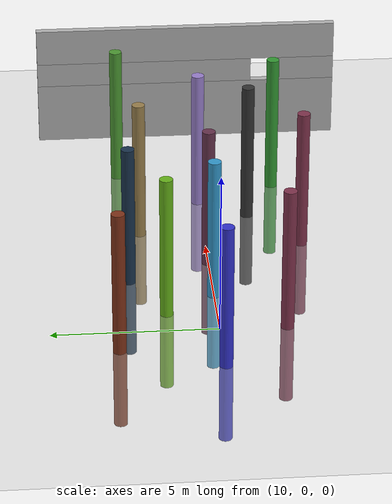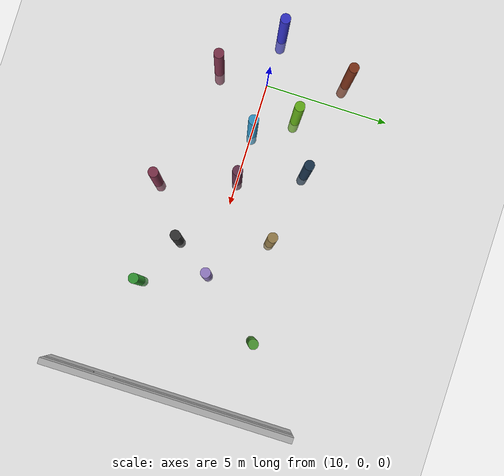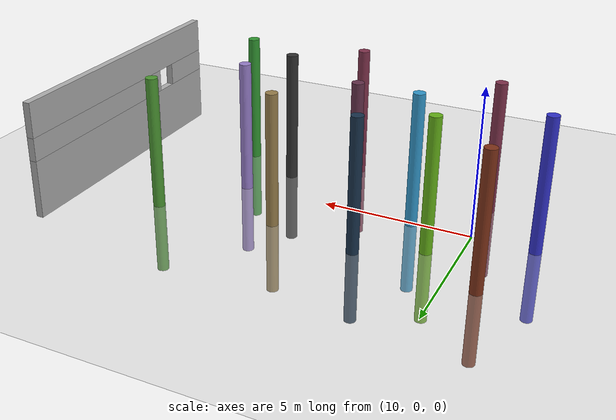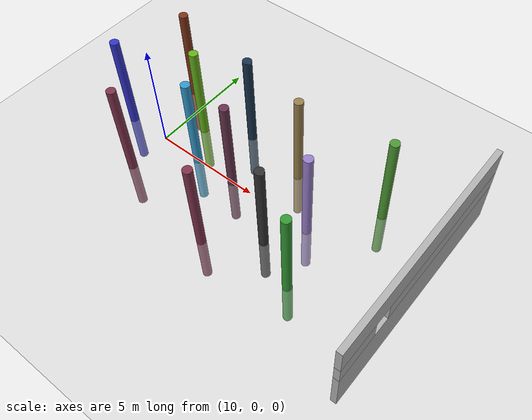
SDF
<sdf version="1.9">
 <world name="default">
  <physics type="ode">
   <max_step_size>0.004</max_step_size>
   <real_time_factor>1.0</real_time_factor>
   <real_time_update_rate>250</real_time_update_rate>
  </physics>
  <gravity>0 0 -9.8</gravity>
  <magnetic_field>6e-06 2.3e-05 -4.2e-05</magnetic_field>
  <atmosphere type="adiabatic"/>
  <scene>
   <grid>false</grid>
   <ambient>0.4 0.4 0.4 1</ambient>
   <background>0.7 0.7 0.7 1</background>
   <shadows>true</shadows>
  </scene>
  <light name="sunUTC" type="directional">
   <pose>0 0 500 0 -0 0</pose>
   <intensity>1</intensity>
   <direction>0.001 0.625 -0.78</direction>
   <diffuse>0.904 0.904 0.904 1</diffuse>
   <specular>0.271 0.271 0.271 1</specular>
   <attenuation><range>2000</range><linear>0</linear><constant>1</constant><quadratic>0</quadratic></attenuation>
   <spot><inner_angle>0</inner_angle><outer_angle>0</outer_angle><falloff>0</falloff></spot>
  </light>
  <spherical_coordinates>
   <surface_model>EARTH_WGS84</surface_model>
   <world_frame_orientation>ENU</world_frame_orientation>
   <latitude_deg>37.412173071650805</latitude_deg>
   <longitude_deg>-121.998878727967</longitude_deg>
   <elevation>38</elevation>
  </spherical_coordinates>
  <model name="ground_plane">
   <static>true</static>
   <link name="link">
    <collision name="collision">
     <geometry><plane><normal>0 0 1</normal><size>1 1</size></plane></geometry>
    </collision>
    <visual name="visual">
     <geometry><plane><normal>0 0 1</normal><size>100 100</size></plane></geometry>
     <material>
      <ambient>0.8 0.8 0.8 1</ambient>
      <diffuse>0.8 0.8 0.8 1</diffuse>
      <specular>0.8 0.8 0.8 1</specular>
     </material>
    </visual>
    <inertial>
     <mass>1</mass>
     <inertia><ixx>1</ixx><ixy>0</ixy><ixz>0</ixz><iyy>1</iyy><iyz>0</iyz><izz>1</izz></inertia>
    </inertial>
   </link>
  </model>
  <model name="box1">
   <pose>23 0 1 0 0 0</pose>
   <static>true</static>
   <link name="link1">
    <collision name="collision"><geometry><box><size>0.25 10 2</size></box></geometry></collision>
    <visual name="visual">
     <geometry><box><size>0.25 10 2</size></box></geometry>
     <material>
      <ambient>0.3 0.3 0.3 1</ambient>
      <diffuse>0.7 0.7 0.7 1</diffuse>
      <specular>1 1 1 1</specular>
     </material>
    </visual>
   </link>
  </model>
  <model name="box2">
   <pose>23 -4 2.4 0 0 0</pose>
   <static>true</static>
   <link name="link1">
    <collision name="collision"><geometry><box><size>0.25 2 0.8</size></box></geometry></collision>
    <visual name="visual">
     <geometry><box><size>0.25 2 0.8</size></box></geometry>
     <material>
      <ambient>0.3 0.3 0.3 1</ambient>
      <diffuse>0.7 0.7 0.7 1</diffuse>
      <specular>1 1 1 1</specular>
     </material>
    </visual>
   </link>
  </model>
  <model name="box3">
   <pose>23 1.4 2.4 0 0 0</pose>
   <static>true</static>
   <link name="link1">
    <collision name="collision"><geometry><box><size>0.25 7.2 0.8</size></box></geometry></collision>
    <visual name="visual">
     <geometry><box><size>0.25 7.2 0.8</size></box></geometry>
     <material>
      <ambient>0.3 0.3 0.3 1</ambient>
      <diffuse>0.7 0.7 0.7 1</diffuse>
      <specular>1 1 1 1</specular>
     </material>
    </visual>
   </link>
  </model>
  <model name="box4">
   <pose>23 0 3.4 0 0 0</pose>
   <static>true</static>
   <link name="link1">
    <collision name="collision"><geometry><box><size>0.25 10 1.2</size></box></geometry></collision>
    <visual name="visual">
     <geometry><box><size>0.25 10 1.2</size></box></geometry>
     <material>
      <ambient>0.3 0.3 0.3 1</ambient>
      <diffuse>0.7 0.7 0.7 1</diffuse>
      <specular>1 1 1 1</specular>
     </material>
    </visual>
   </link>
  </model>
  <model name="cylinder1">
   <pose>8 0 1 0 0 0</pose>
   <static>true</static>
   <link name="link1">
    <collision name="collision">
     <geometry><cylinder><radius>0.2</radius><length>7.0</length></cylinder></geometry>
    </collision>
    <visual name="visual">
     <geometry><cylinder><radius>0.2</radius><length>7.0</length></cylinder></geometry>
     <material>
      <ambient>0.2 0.2 0.8 1</ambient>
      <diffuse>0.2 0.2 0.8 1</diffuse>
      <specular>0.5 0.5 0.5 1</specular>
     </material>
    </visual>
   </link>
  </model>
  <model name="cylinder2">
   <pose>9 3 1 0 0 0</pose>
   <static>true</static>
   <link name="link1">
    <collision name="collision">
     <geometry><cylinder><radius>0.2</radius><length>7.0</length></cylinder></geometry>
    </collision>
    <visual name="visual">
     <geometry><cylinder><radius>0.2</radius><length>7.0</length></cylinder></geometry>
     <material>
      <ambient>0.5 0.2 0.1 1</ambient>
      <diffuse>0.5 0.2 0.1 1</diffuse>
      <specular>0.5 0.5 0.5 1</specular>
     </material>
    </visual>
   </link>
  </model>
  <model name="cylinder3">
   <pose>10 -2 1 0 0 0</pose>
   <static>true</static>
   <link name="link1">
    <collision name="collision">
     <geometry><cylinder><radius>0.2</radius><length>7.0</length></cylinder></geometry>
    </collision>
    <visual name="visual">
     <geometry><cylinder><radius>0.2</radius><length>7.0</length></cylinder></geometry>
     <material>
      <ambient>0.5 0.2 0.3 1</ambient>
      <diffuse>0.5 0.2 0.3 1</diffuse>
      <specular>0.5 0.5 0.5 1</specular>
     </material>
    </visual>
   </link>
  </model>
  <model name="cylinder4">
   <pose>11 1.5 1 0 0 0</pose>
   <static>true</static>
   <link name="link1">
    <collision name="collision">
     <geometry><cylinder><radius>0.2</radius><length>7.0</length></cylinder></geometry>
    </collision>
    <visual name="visual">
     <geometry><cylinder><radius>0.2</radius><length>7.0</length></cylinder></geometry>
     <material>
      <ambient>0.4 0.7 0.1 1</ambient>
      <diffuse>0.4 0.7 0.1 1</diffuse>
      <specular>0.5 0.5 0.5 1</specular>
     </material>
    </visual>
   </link>
  </model>
  <model name="cylinder5">
   <pose>12 0 1 0 0 0</pose>
   <static>true</static>
   <link name="link1">
    <collision name="collision">
     <geometry><cylinder><radius>0.2</radius><length>7.0</length></cylinder></geometry>
    </collision>
    <visual name="visual">
     <geometry><cylinder><radius>0.2</radius><length>7.0</length></cylinder></geometry>
     <material>
      <ambient>0.2 0.6 0.8 1</ambient>
      <diffuse>0.2 0.6 0.8 1</diffuse>
      <specular>0.5 0.5 0.5 1</specular>
     </material>
    </visual>
   </link>
  </model>
  <model name="cylinder6">
   <pose>13 2.5 1 0 0 0</pose>
   <static>true</static>
   <link name="link1">
    <collision name="collision">
     <geometry><cylinder><radius>0.2</radius><length>7.0</length></cylinder></geometry>
    </collision>
    <visual name="visual">
     <geometry><cylinder><radius>0.2</radius><length>7.0</length></cylinder></geometry>
     <material>
      <ambient>0.1 0.2 0.3 1</ambient>
      <diffuse>0.1 0.2 0.3 1</diffuse>
      <specular>0.5 0.5 0.5 1</specular>
     </material>
    </visual>
   </link>
  </model>
  <model name="cylinder7">
   <pose>13 2.5 1 0 0 0</pose>
   <static>true</static>
   <link name="link1">
    <collision name="collision">
     <geometry><cylinder><radius>0.2</radius><length>7.0</length></cylinder></geometry>
    </collision>
    <visual name="visual">
     <geometry><cylinder><radius>0.2</radius><length>7.0</length></cylinder></geometry>
     <material>
      <ambient>0.6 0.2 0.8 1</ambient>
      <diffuse>0.6 0.2 0.8 1</diffuse>
      <specular>0.5 0.5 0.5 1</specular>
     </material>
    </visual>
   </link>
  </model>
  <model name="cylinder8">
   <pose>14 0 1 0 0 0</pose>
   <static>true</static>
   <link name="link1">
    <collision name="collision">
     <geometry><cylinder><radius>0.2</radius><length>7.0</length></cylinder></geometry>
    </collision>
    <visual name="visual">
     <geometry><cylinder><radius>0.2</radius><length>7.0</length></cylinder></geometry>
     <material>
      <ambient>0.4 0.2 0.3 1</ambient>
      <diffuse>0.4 0.2 0.3 1</diffuse>
      <specular>0.5 0.5 0.5 1</specular>
     </material>
    </visual>
   </link>
  </model>
  <model name="cylinder9">
   <pose>15 -3 1 0 0 0</pose>
   <static>true</static>
   <link name="link1">
    <collision name="collision">
     <geometry><cylinder><radius>0.2</radius><length>7.0</length></cylinder></geometry>
    </collision>
    <visual name="visual">
     <geometry><cylinder><radius>0.2</radius><length>7.0</length></cylinder></geometry>
     <material>
      <ambient>0.5 0.2 0.3 1</ambient>
      <diffuse>0.5 0.2 0.3 1</diffuse>
      <specular>0.5 0.5 0.5 1</specular>
     </material>
    </visual>
   </link>
  </model>
  <model name="cylinder10">
   <pose>16 2 1 0 0 0</pose>
   <static>true</static>
   <link name="link1">
    <collision name="collision">
     <geometry><cylinder><radius>0.2</radius><length>7.0</length></cylinder></geometry>
    </collision>
    <visual name="visual">
     <geometry><cylinder><radius>0.2</radius><length>7.0</length></cylinder></geometry>
     <material>
      <ambient>0.6 0.5 0.3 1</ambient>
      <diffuse>0.6 0.5 0.3 1</diffuse>
      <specular>0.5 0.5 0.5 1</specular>
     </material>
    </visual>
   </link>
  </model>
  <model name="cylinder11">
   <pose>17 -1.5 1 0 0 0</pose>
   <static>true</static>
   <link name="link1">
    <collision name="collision">
     <geometry><cylinder><radius>0.2</radius><length>7.0</length></cylinder></geometry>
    </collision>
    <visual name="visual">
     <geometry><cylinder><radius>0.2</radius><length>7.0</length></cylinder></geometry>
     <material>
      <ambient>0.2 0.2 0.2 1</ambient>
      <diffuse>0.2 0.2 0.2 1</diffuse>
      <specular>0.5 0.5 0.5 1</specular>
     </material>
    </visual>
   </link>
  </model>
  <model name="cylinder12">
   <pose>18 0 1 0 0 0</pose>
   <static>true</static>
   <link name="link1">
    <collision name="collision">
     <geometry><cylinder><radius>0.2</radius><length>7.0</length></cylinder></geometry>
    </collision>
    <visual name="visual">
     <geometry><cylinder><radius>0.2</radius><length>7.0</length></cylinder></geometry>
     <material>
      <ambient>0.6 0.5 0.8 1</ambient>
      <diffuse>0.6 0.5 0.8 1</diffuse>
      <specular>0.5 0.5 0.5 1</specular>
     </material>
    </visual>
   </link>
  </model>
  <model name="cylinder13">
   <pose>19 -2.5 1 0 0 0</pose>
   <static>true</static>
   <link name="link1">
    <collision name="collision">
     <geometry><cylinder><radius>0.2</radius><length>7.0</length></cylinder></geometry>
    </collision>
    <visual name="visual">
     <geometry><cylinder><radius>0.2</radius><length>7.0</length></cylinder></geometry>
     <material>
      <ambient>0.2 0.6 0.2 1</ambient>
      <diffuse>0.2 0.6 0.2 1</diffuse>
      <specular>0.5 0.5 0.5 1</specular>
     </material>
    </visual>
   </link>
  </model>
  <model name="cylinder14">
   <pose>20 2.5 1 0 0 0</pose>
   <static>true</static>
   <link name="link1">
    <collision name="collision">
     <geometry><cylinder><radius>0.2</radius><length>7.0</length></cylinder></geometry>
    </collision>
    <visual name="visual">
     <geometry><cylinder><radius>0.2</radius><length>7.0</length></cylinder></geometry>
     <material>
      <ambient>0.3 0.6 0.2 1</ambient>
      <diffuse>0.3 0.6 0.2 1</diffuse>
      <specular>0.5 0.5 0.5 1</specular>
     </material>
    </visual>
   </link>
  </model>
 </world>
</sdf>
